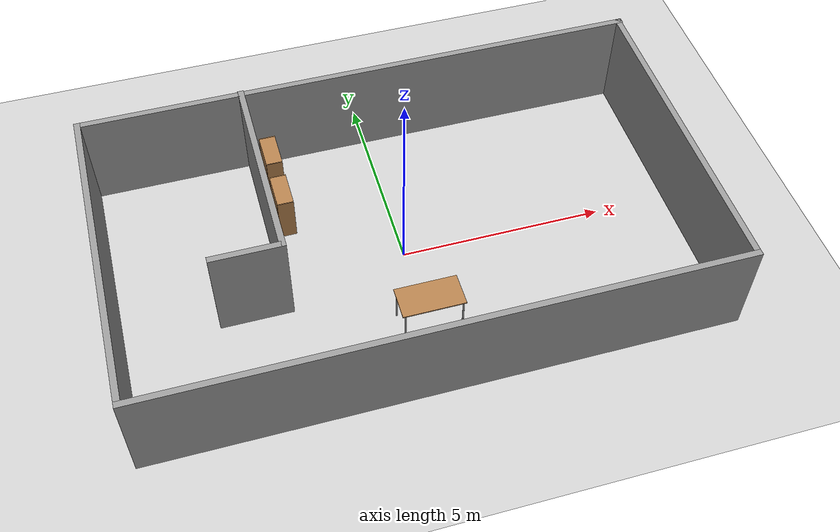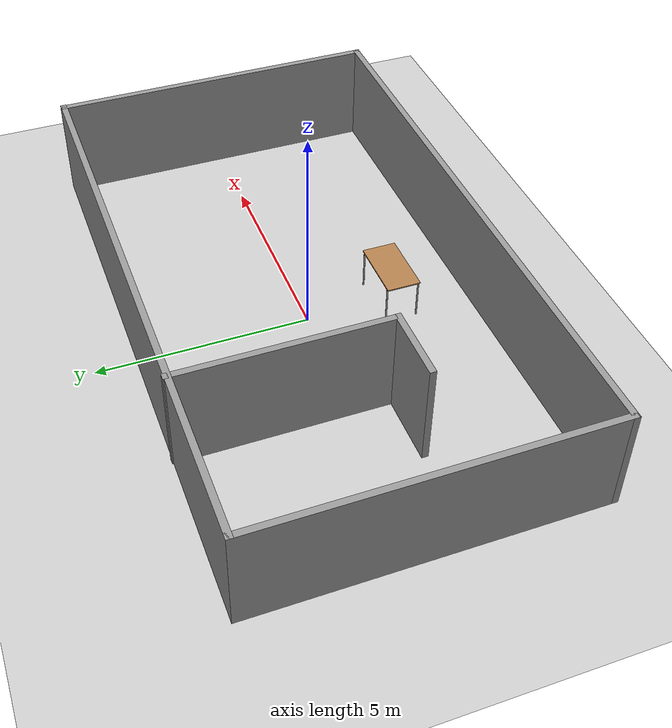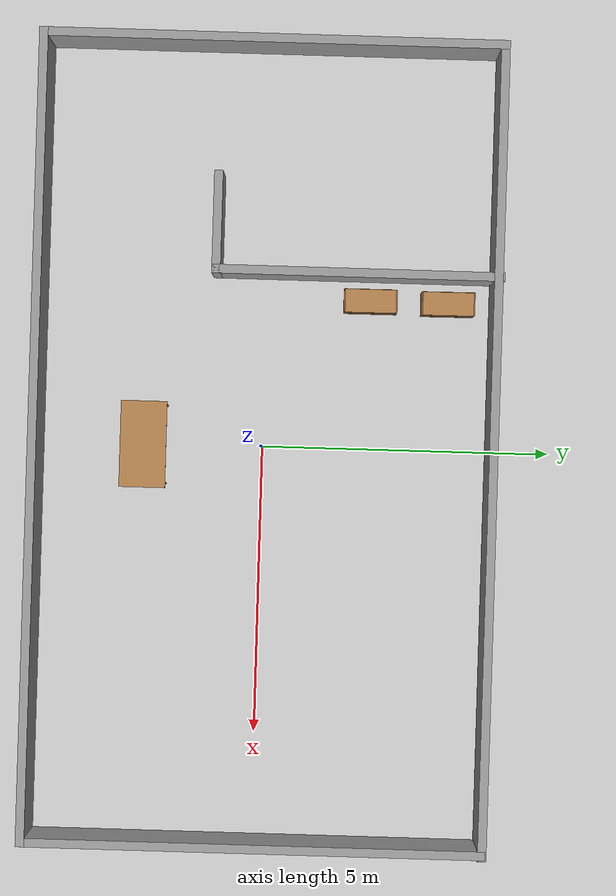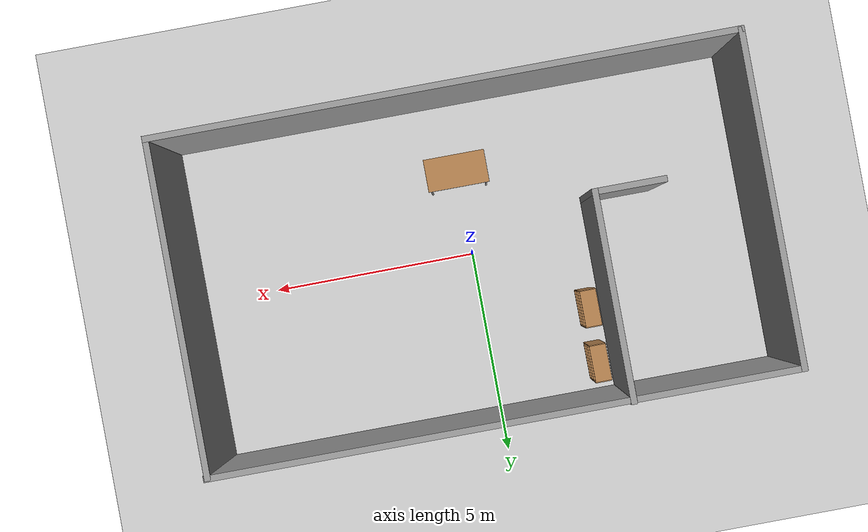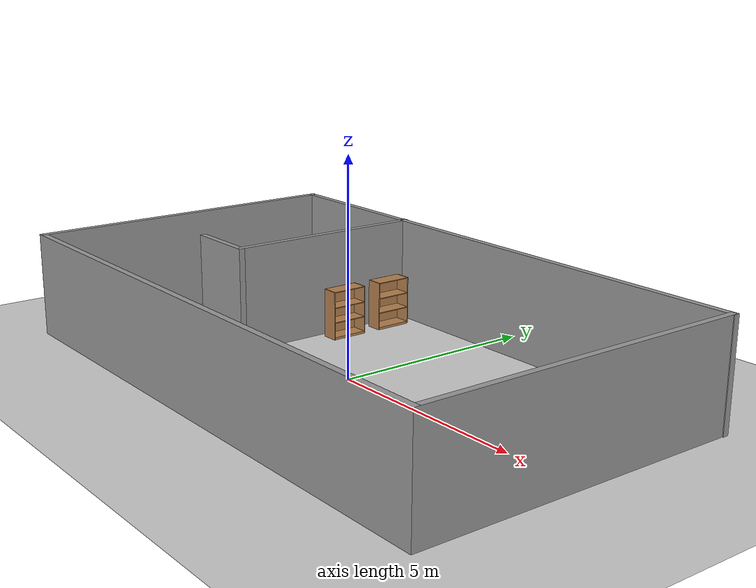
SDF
<sdf version="1.7">
 <world name="default">
  <light name="sun" type="directional">
   <pose>0 0 10 0 -0 0</pose>
   <diffuse>0.8 0.8 0.8 1</diffuse>
   <specular>0.2 0.2 0.2 1</specular>
   <attenuation>
    <range>1000</range>
    <constant>0.9</constant>
    <linear>0.01</linear>
    <quadratic>0.001</quadratic>
   </attenuation>
   <direction>-0.5 0.1 -0.9</direction>
   <spot><inner_angle>0</inner_angle><outer_angle>0</outer_angle><falloff>0</falloff></spot>
  </light>
  <model name="ground_plane">
   <static>1</static>
   <link name="link">
    <collision name="collision">
     <geometry><plane><normal>0 0 1</normal><size>100 100</size></plane></geometry>
     <surface>
      <contact><collide_bitmask>65535</collide_bitmask></contact>
      <friction><ode><mu>100</mu><mu2>50</mu2></ode></friction>
     </surface>
    </collision>
    <visual name="visual">
     <cast_shadows>0</cast_shadows>
     <geometry><plane><normal>0 0 1</normal><size>100 100</size></plane></geometry>
     <material>
      <script><uri>file://media/materials/scripts/gazebo.material</uri><name>Gazebo/Grey</name></script>
     </material>
    </visual>
   </link>
  </model>
  <gravity>0 0 -9.8</gravity>
  <magnetic_field>6e-06 2.3e-05 -4.2e-05</magnetic_field>
  <atmosphere type="adiabatic"/>
  <physics type="ode">
   <max_step_size>0.001</max_step_size>
   <real_time_factor>1</real_time_factor>
   <real_time_update_rate>1000</real_time_update_rate>
  </physics>
  <scene><ambient>0.4 0.4 0.4 1</ambient><background>0.7 0.7 0.7 1</background><shadows>1</shadows></scene>
  <audio><device>default</device></audio>
  <spherical_coordinates>
   <surface_model>EARTH_WGS84</surface_model>
   <latitude_deg>0</latitude_deg>
   <longitude_deg>0</longitude_deg>
   <elevation>0</elevation>
   <heading_deg>0</heading_deg>
  </spherical_coordinates>
  <model name="Test_World_1">
   <pose>-0.034887 0.049227 0 0 -0 0</pose>
   <link name="Wall_0">
    <collision name="Wall_0_Collision">
     <geometry><box><size>13.9799 0.15 2.5</size></box></geometry>
     <pose>0 0 1.25 0 -0 0</pose>
    </collision>
    <visual name="Wall_0_Visual">
     <pose>0 0 1.25 0 -0 0</pose>
     <geometry><box><size>13.9799 0.15 2.5</size></box></geometry>
     <material>
      <script><uri>file://media/materials/scripts/gazebo.material</uri><name>Gazebo/Grey</name></script>
      <ambient>1 1 1 1</ambient>
     </material>
     <meta><layer>0</layer></meta>
    </visual>
    <pose>-0.010057 -3.94923 0 0 -0 0</pose>
   </link>
   <link name="Wall_2">
    <collision name="Wall_2_Collision">
     <geometry><box><size>8 0.15 2.5</size></box></geometry>
     <pose>0 0 1.25 0 -0 0</pose>
    </collision>
    <visual name="Wall_2_Visual">
     <pose>0 0 1.25 0 -0 0</pose>
     <geometry><box><size>8 0.15 2.5</size></box></geometry>
     <material>
      <script><uri>file://media/materials/scripts/gazebo.material</uri><name>Gazebo/Grey</name></script>
      <ambient>1 1 1 1</ambient>
     </material>
     <meta><layer>0</layer></meta>
    </visual>
    <pose>-6.925 -0.004113 0 0 -0 1.5708</pose>
   </link>
   <link name="Wall_4">
    <collision name="Wall_4_Collision">
     <geometry><box><size>8 0.15 2.5</size></box></geometry>
     <pose>0 0 1.25 0 -0 0</pose>
    </collision>
    <visual name="Wall_4_Visual">
     <pose>0 0 1.25 0 -0 0</pose>
     <geometry><box><size>8 0.15 2.5</size></box></geometry>
     <material>
      <script><uri>file://media/materials/scripts/gazebo.material</uri><name>Gazebo/Grey</name></script>
      <ambient>1 1 1 1</ambient>
     </material>
     <meta><layer>0</layer></meta>
    </visual>
    <pose>6.90489 -0.024227 0 0 -0 1.5708</pose>
   </link>
   <link name="Wall_6">
    <collision name="Wall_6_Collision">
     <geometry><box><size>14 0.15 2.5</size></box></geometry>
     <pose>0 0 1.25 0 -0 0</pose>
    </collision>
    <visual name="Wall_6_Visual">
     <pose>0 0 1.25 0 -0 0</pose>
     <geometry><box><size>14 0.15 2.5</size></box></geometry>
     <material>
      <script><uri>file://media/materials/scripts/gazebo.material</uri><name>Gazebo/Grey</name></script>
      <ambient>1 1 1 1</ambient>
     </material>
     <meta><layer>0</layer></meta>
    </visual>
    <pose>0 3.92089 0 0 -0 0</pose>
   </link>
   <link name="Wall_8">
    <collision name="Wall_8_Collision">
     <geometry><box><size>5 0.15 2.5</size></box></geometry>
     <pose>0 0 1.25 0 -0 0</pose>
    </collision>
    <visual name="Wall_8_Visual">
     <pose>0 0 1.25 0 -0 0</pose>
     <geometry><box><size>5 0.15 2.5</size></box></geometry>
     <material>
      <script><uri>file://media/materials/scripts/gazebo.material</uri><name>Gazebo/Grey</name></script>
      <ambient>1 1 1 1</ambient>
     </material>
     <meta><layer>0</layer></meta>
    </visual>
    <pose>-2.96704 1.52423 0 0 -0 -1.5708</pose>
   </link>
   <link name="Wall_9">
    <collision name="Wall_9_Collision">
     <geometry><box><size>1.75 0.15 2.5</size></box></geometry>
     <pose>0 0 1.25 0 -0 0</pose>
    </collision>
    <visual name="Wall_9_Visual">
     <pose>0 0 1.25 0 -0 0</pose>
     <geometry><box><size>1.75 0.15 2.5</size></box></geometry>
     <material>
      <script><uri>file://media/materials/scripts/gazebo.material</uri><name>Gazebo/Grey</name></script>
      <ambient>1 1 1 1</ambient>
     </material>
     <meta><layer>0</layer></meta>
    </visual>
    <pose>-3.76704 -0.900773 0 0 -0 3.14159</pose>
   </link>
   <static>1</static>
  </model>
  <model name="bookshelf">
   <static>1</static>
   <link name="link">
    <inertial><mass>1</mass></inertial>
    <collision name="back">
     <pose>0 0.005 0.6 0 -0 0</pose>
     <geometry><box><size>0.9 0.01 1.2</size></box></geometry>
    </collision>
    <visual name="visual1">
     <pose>0 0.005 0.6 0 -0 0</pose>
     <geometry><box><size>0.9 0.01 1.2</size></box></geometry>
     <material>
      <script><uri>file://media/materials/scripts/gazebo.material</uri><name>Gazebo/Wood</name></script>
     </material>
    </visual>
    <collision name="left_side">
     <pose>0.45 -0.195 0.6 0 -0 0</pose>
     <geometry><box><size>0.02 0.4 1.2</size></box></geometry>
    </collision>
    <visual name="visual2">
     <pose>0.45 -0.195 0.6 0 -0 0</pose>
     <geometry><box><size>0.02 0.4 1.2</size></box></geometry>
     <material>
      <script><uri>file://media/materials/scripts/gazebo.material</uri><name>Gazebo/Wood</name></script>
     </material>
    </visual>
    <collision name="right_side">
     <pose>-0.45 -0.195 0.6 0 -0 0</pose>
     <geometry><box><size>0.02 0.4 1.2</size></box></geometry>
    </collision>
    <visual name="visual3">
     <pose>-0.45 -0.195 0.6 0 -0 0</pose>
     <geometry><box><size>0.02 0.4 1.2</size></box></geometry>
     <material>
      <script><uri>file://media/materials/scripts/gazebo.material</uri><name>Gazebo/Wood</name></script>
     </material>
    </visual>
    <collision name="bottom">
     <pose>0 -0.195 0.03 0 -0 0</pose>
     <geometry><box><size>0.88 0.4 0.06</size></box></geometry>
    </collision>
    <visual name="visual4">
     <pose>0 -0.195 0.03 0 -0 0</pose>
     <geometry><box><size>0.88 0.4 0.06</size></box></geometry>
     <material>
      <script><uri>file://media/materials/scripts/gazebo.material</uri><name>Gazebo/Wood</name></script>
     </material>
    </visual>
    <collision name="top">
     <pose>0 -0.195 1.19 0 -0 0</pose>
     <geometry><box><size>0.88 0.4 0.02</size></box></geometry>
    </collision>
    <visual name="visual5">
     <pose>0 -0.195 1.19 0 -0 0</pose>
     <geometry><box><size>0.88 0.4 0.02</size></box></geometry>
     <material>
      <script><uri>file://media/materials/scripts/gazebo.material</uri><name>Gazebo/Wood</name></script>
     </material>
    </visual>
    <collision name="low_shelf">
     <pose>0 -0.195 0.43 0 -0 0</pose>
     <geometry><box><size>0.88 0.4 0.02</size></box></geometry>
    </collision>
    <visual name="visual6">
     <pose>0 -0.195 0.43 0 -0 0</pose>
     <geometry><box><size>0.88 0.4 0.02</size></box></geometry>
     <material>
      <script><uri>file://media/materials/scripts/gazebo.material</uri><name>Gazebo/Wood</name></script>
     </material>
    </visual>
    <collision name="high_shelf">
     <pose>0 -0.195 0.8 0 -0 0</pose>
     <geometry><box><size>0.88 0.4 0.02</size></box></geometry>
    </collision>
    <visual name="visual7">
     <pose>0 -0.195 0.8 0 -0 0</pose>
     <geometry><box><size>0.88 0.4 0.02</size></box></geometry>
     <material>
      <script><uri>file://media/materials/scripts/gazebo.material</uri><name>Gazebo/Wood</name></script>
     </material>
    </visual>
    <velocity_decay><linear>0</linear><angular>0</angular></velocity_decay>
   </link>
   <pose>-2.75176 3.1567 0 0 -0 1.57628</pose>
  </model>
  <model name="bookshelf_0">
   <static>1</static>
   <link name="link">
    <inertial><mass>1</mass></inertial>
    <collision name="back">
     <pose>0 0.005 0.6 0 -0 0</pose>
     <geometry><box><size>0.9 0.01 1.2</size></box></geometry>
    </collision>
    <visual name="visual1">
     <pose>0 0.005 0.6 0 -0 0</pose>
     <geometry><box><size>0.9 0.01 1.2</size></box></geometry>
     <material>
      <script><uri>file://media/materials/scripts/gazebo.material</uri><name>Gazebo/Wood</name></script>
     </material>
    </visual>
    <collision name="left_side">
     <pose>0.45 -0.195 0.6 0 -0 0</pose>
     <geometry><box><size>0.02 0.4 1.2</size></box></geometry>
    </collision>
    <visual name="visual2">
     <pose>0.45 -0.195 0.6 0 -0 0</pose>
     <geometry><box><size>0.02 0.4 1.2</size></box></geometry>
     <material>
      <script><uri>file://media/materials/scripts/gazebo.material</uri><name>Gazebo/Wood</name></script>
     </material>
    </visual>
    <collision name="right_side">
     <pose>-0.45 -0.195 0.6 0 -0 0</pose>
     <geometry><box><size>0.02 0.4 1.2</size></box></geometry>
    </collision>
    <visual name="visual3">
     <pose>-0.45 -0.195 0.6 0 -0 0</pose>
     <geometry><box><size>0.02 0.4 1.2</size></box></geometry>
     <material>
      <script><uri>file://media/materials/scripts/gazebo.material</uri><name>Gazebo/Wood</name></script>
     </material>
    </visual>
    <collision name="bottom">
     <pose>0 -0.195 0.03 0 -0 0</pose>
     <geometry><box><size>0.88 0.4 0.06</size></box></geometry>
    </collision>
    <visual name="visual4">
     <pose>0 -0.195 0.03 0 -0 0</pose>
     <geometry><box><size>0.88 0.4 0.06</size></box></geometry>
     <material>
      <script><uri>file://media/materials/scripts/gazebo.material</uri><name>Gazebo/Wood</name></script>
     </material>
    </visual>
    <collision name="top">
     <pose>0 -0.195 1.19 0 -0 0</pose>
     <geometry><box><size>0.88 0.4 0.02</size></box></geometry>
    </collision>
    <visual name="visual5">
     <pose>0 -0.195 1.19 0 -0 0</pose>
     <geometry><box><size>0.88 0.4 0.02</size></box></geometry>
     <material>
      <script><uri>file://media/materials/scripts/gazebo.material</uri><name>Gazebo/Wood</name></script>
     </material>
    </visual>
    <collision name="low_shelf">
     <pose>0 -0.195 0.43 0 -0 0</pose>
     <geometry><box><size>0.88 0.4 0.02</size></box></geometry>
    </collision>
    <visual name="visual6">
     <pose>0 -0.195 0.43 0 -0 0</pose>
     <geometry><box><size>0.88 0.4 0.02</size></box></geometry>
     <material>
      <script><uri>file://media/materials/scripts/gazebo.material</uri><name>Gazebo/Wood</name></script>
     </material>
    </visual>
    <collision name="high_shelf">
     <pose>0 -0.195 0.8 0 -0 0</pose>
     <geometry><box><size>0.88 0.4 0.02</size></box></geometry>
    </collision>
    <visual name="visual7">
     <pose>0 -0.195 0.8 0 -0 0</pose>
     <geometry><box><size>0.88 0.4 0.02</size></box></geometry>
     <material>
      <script><uri>file://media/materials/scripts/gazebo.material</uri><name>Gazebo/Wood</name></script>
     </material>
    </visual>
    <velocity_decay><linear>0</linear><angular>0</angular></velocity_decay>
   </link>
   <pose>-2.76262 1.81314 0 0 -0 1.57315</pose>
  </model>
  <model name="table">
   <static>1</static>
   <link name="link">
    <collision name="surface">
     <pose>0 0 1 0 -0 0</pose>
     <geometry><box><size>1.5 0.8 0.03</size></box></geometry>
    </collision>
    <visual name="visual1">
     <pose>0 0 1 0 -0 0</pose>
     <geometry><box><size>1.5 0.8 0.03</size></box></geometry>
     <material>
      <script><uri>file://media/materials/scripts/gazebo.material</uri><name>Gazebo/Wood</name></script>
     </material>
    </visual>
    <collision name="front_left_leg">
     <pose>0.68 0.38 0.5 0 -0 0</pose>
     <geometry><cylinder><radius>0.02</radius><length>1</length></cylinder></geometry>
    </collision>
    <visual name="front_left_leg">
     <pose>0.68 0.38 0.5 0 -0 0</pose>
     <geometry><cylinder><radius>0.02</radius><length>1</length></cylinder></geometry>
     <material>
      <script><uri>file://media/materials/scripts/gazebo.material</uri><name>Gazebo/Grey</name></script>
     </material>
    </visual>
    <collision name="front_right_leg">
     <pose>0.68 -0.38 0.5 0 -0 0</pose>
     <geometry><cylinder><radius>0.02</radius><length>1</length></cylinder></geometry>
    </collision>
    <visual name="front_right_leg">
     <pose>0.68 -0.38 0.5 0 -0 0</pose>
     <geometry><cylinder><radius>0.02</radius><length>1</length></cylinder></geometry>
     <material>
      <script><uri>file://media/materials/scripts/gazebo.material</uri><name>Gazebo/Grey</name></script>
     </material>
    </visual>
    <collision name="back_right_leg">
     <pose>-0.68 -0.38 0.5 0 -0 0</pose>
     <geometry><cylinder><radius>0.02</radius><length>1</length></cylinder></geometry>
    </collision>
    <visual name="back_right_leg">
     <pose>-0.68 -0.38 0.5 0 -0 0</pose>
     <geometry><cylinder><radius>0.02</radius><length>1</length></cylinder></geometry>
     <material>
      <script><uri>file://media/materials/scripts/gazebo.material</uri><name>Gazebo/Grey</name></script>
     </material>
    </visual>
    <collision name="back_left_leg">
     <pose>-0.68 0.38 0.5 0 -0 0</pose>
     <geometry><cylinder><radius>0.02</radius><length>1</length></cylinder></geometry>
    </collision>
    <visual name="back_left_leg">
     <pose>-0.68 0.38 0.5 0 -0 0</pose>
     <geometry><cylinder><radius>0.02</radius><length>1</length></cylinder></geometry>
     <material>
      <script><uri>file://media/materials/scripts/gazebo.material</uri><name>Gazebo/Grey</name></script>
     </material>
    </visual>
    <velocity_decay><linear>0</linear><angular>0</angular></velocity_decay>
   </link>
   <pose>0.024203 -2.05625 0 0 -0 0</pose>
  </model>
 </world>
</sdf>
